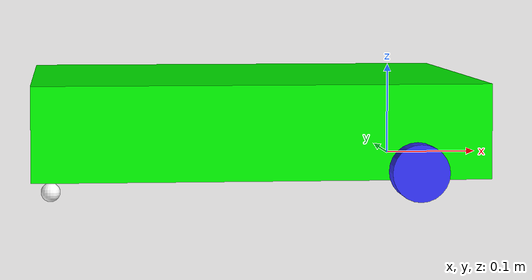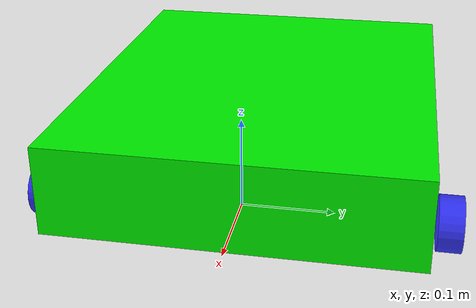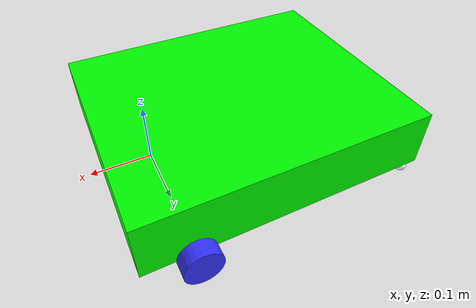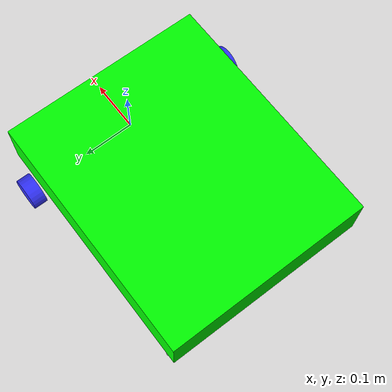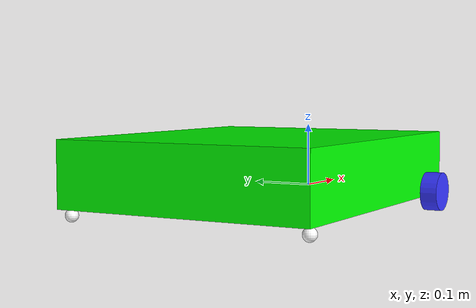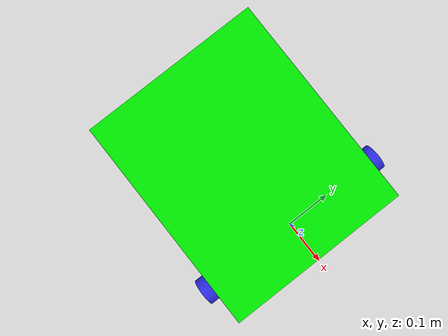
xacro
<?xml version="1.0"?>
<robot xmlns:xacro="http://www.ros.org/wiki/xacro">

    <xacro:include filename="inertial_macros.xacro" />

    <xacro:property name="chassis_length" value="0.48" />
    <xacro:property name="chassis_width" value="0.4" />
    <xacro:property name="chassis_height" value="0.1" />
    <xacro:property name="chassis_mass" value="1.0" />
    <xacro:property name="wheel_radius" value="0.03" />
    <xacro:property name="wheel_thickness" value="0.026" />
    <xacro:property name="wheel_mass" value="0.05" />
    <xacro:property name="wheel_offset_x" value="0.4" />
    <xacro:property name="wheel_offset_y" value="0.22" />
    <xacro:property name="wheel_offset_z" value="0.01" />
    <xacro:property name="caster_wheel_radius" value="0.01" />
    <xacro:property name="caster_wheel_mass" value="0.01" />
    <xacro:property name="caster_wheel_offset_x" value="0.02" />
    <xacro:property name="caster_wheel_offset_z"
        value="${wheel_offset_z - wheel_radius + caster_wheel_radius}" />
    <xacro:property name="caster_wheel_offset_y" value="0.19" />

    <material name="white">
        <color rgba="1 1 1 1" />
    </material>

    <material name="green">
         <color rgba="0 1 0 1" />
    </material>

    <material name="blue">
        <color rgba="0.2 0.2 1 1" />
    </material>

    <material name="black">
        <color rgba="0 0 0 1" />
    </material>

    <material name="red">
        <color rgba="1 0 0 1" />
    </material>

    <!-- BASE LINK -->

    <link name="base_link">

    </link>

    <!-- BASE_FOOTPRINT LINK -->

    <joint name="base_footprint_joint" type="fixed">
        <parent link="base_link" />
        <child link="base_footprint" />
        <origin xyz="0 0 0" rpy="0 0 0" />
    </joint>

    <link name="base_footprint">
    </link>

    <!-- CHASSIS LINK -->

    <joint name="chassis_joint" type="fixed">
        <parent link="base_link" />
        <child link="chassis" />
        <origin xyz="${-wheel_offset_x} 0 ${-wheel_offset_z}" />
    </joint>

    <link name="chassis">
        <visual>
            <origin xyz="${chassis_length/2} 0 ${chassis_height/2}" />
            <geometry>
                <box size="${chassis_length} ${chassis_width} ${chassis_height}" />
            </geometry>
            <material name="green" />
        </visual>
        <collision>
            <origin xyz="${chassis_length/2} 0 ${chassis_height/2}" />
            <geometry>
                <box size="${chassis_length} ${chassis_width} ${chassis_height}" />
            </geometry>
        </collision>
        <xacro:inertial_box mass="0.5" x="${chassis_length}" y="${chassis_width}"
            z="${chassis_height}">
            <origin xyz="${chassis_length/2} 0 ${chassis_height/2}" rpy="0 0 0" />
        </xacro:inertial_box>
    </link>

    <gazebo reference="chassis">
        <material>Gazebo/Green</material>
    </gazebo>

    <!-- LEFT WHEEL LINK -->

    <joint name="left_wheel_joint" type="continuous">
        <parent link="base_link" />
        <child link="left_wheel" />
        <origin xyz="0 ${wheel_offset_y} 0" rpy="-${pi/2} 0 0" />
        <axis xyz="0 0 1" />
    </joint>

    <link name="left_wheel">
        <visual>
            <geometry>
                <cylinder radius="${wheel_radius}" length="${wheel_thickness}" />
            </geometry>
            <material name="blue" />
        </visual>
        <collision>
            <geometry>
                <sphere radius="${wheel_radius}" />
            </geometry>
        </collision>
        <xacro:inertial_cylinder mass="${wheel_mass}" length="${wheel_thickness}"
            radius="${wheel_radius}">
            <origin xyz="0 0 0" rpy="0 0 0" />
        </xacro:inertial_cylinder>
    </link>

    <gazebo reference="left_wheel">
        <material>Gazebo/Blue</material>
    </gazebo>

    <!-- RIGHT WHEEL LINK -->

    <joint name="right_wheel_joint" type="continuous">
        <parent link="base_link" />
        <child link="right_wheel" />
        <origin xyz="0 ${-wheel_offset_y} 0" rpy="${pi/2} 0 0" />
        <axis xyz="0 0 -1" />
    </joint>

    <link name="right_wheel">
        <visual>
            <geometry>
                <cylinder radius="${wheel_radius}" length="${wheel_thickness}" />
            </geometry>
            <material name="blue" />
        </visual>
        <collision>
            <geometry>
                <sphere radius="${wheel_radius}" />
            </geometry>
        </collision>
        <xacro:inertial_cylinder mass="${wheel_mass}" length="${wheel_thickness}"
            radius="${wheel_radius}">
            <origin xyz="0 0 0" rpy="0 0 0" />
        </xacro:inertial_cylinder>
    </link>

    <gazebo reference="right_wheel">
        <material>Gazebo/Blue</material>
    </gazebo>

    <!-- CASTER WHEEL LINK -->

    <joint name="caster_wheel_joint" type="fixed">
        <parent link="chassis" />
        <child link="caster_wheel" />
        <origin xyz="${caster_wheel_offset_x} ${caster_wheel_offset_y} ${caster_wheel_offset_z}" />
    </joint>

    <link name="caster_wheel">
        <visual>
            <geometry>
                <sphere radius="${caster_wheel_radius}" />
            </geometry>
            <material name="white" />
        </visual>
        <collision>
            <geometry>
                <sphere radius="${caster_wheel_radius}" />
            </geometry>
        </collision>
        <xacro:inertial_sphere mass="${caster_wheel_mass}" radius="${caster_wheel_radius}">
            <origin xyz="0 0 0" rpy="0 0 0" />
        </xacro:inertial_sphere>
    </link>

    <gazebo reference="caster_wheel">
        <material>Gazebo/White</material>
        <mu1 value="0.001" />
        <mu2 value="0.001" />
    </gazebo>

        <!-- CASTER WHEEL LINK -->

        <joint name="caster_wheel_joint2" type="fixed">
            <parent link="chassis" />
            <child link="caster_wheel2" />
            <origin xyz="${caster_wheel_offset_x} ${-caster_wheel_offset_y} ${caster_wheel_offset_z}" />
        </joint>

        <link name="caster_wheel2">
            <visual>
                <geometry>
                    <sphere radius="${caster_wheel_radius}" />
                </geometry>
                <material name="white" />
            </visual>
            <collision>
                <geometry>
                    <sphere radius="${caster_wheel_radius}" />
                </geometry>
            </collision>
            <xacro:inertial_sphere mass="${caster_wheel_mass}" radius="${caster_wheel_radius}">
                <origin xyz="0 0 0" rpy="0 0 0" />
            </xacro:inertial_sphere>
        </link>

        <gazebo reference="caster_wheel2">
            <material>Gazebo/White</material>
            <mu1 value="0.001" />
            <mu2 value="0.001" />
        </gazebo>

</robot>
